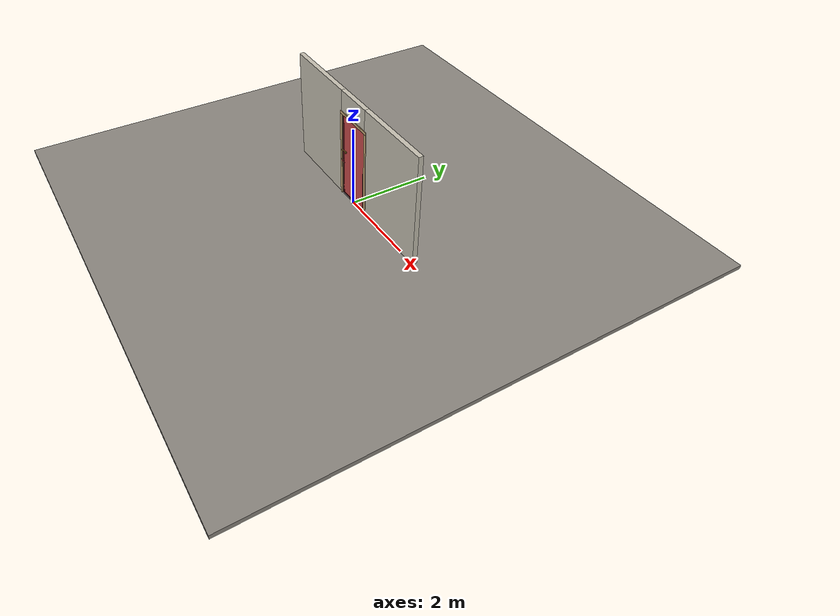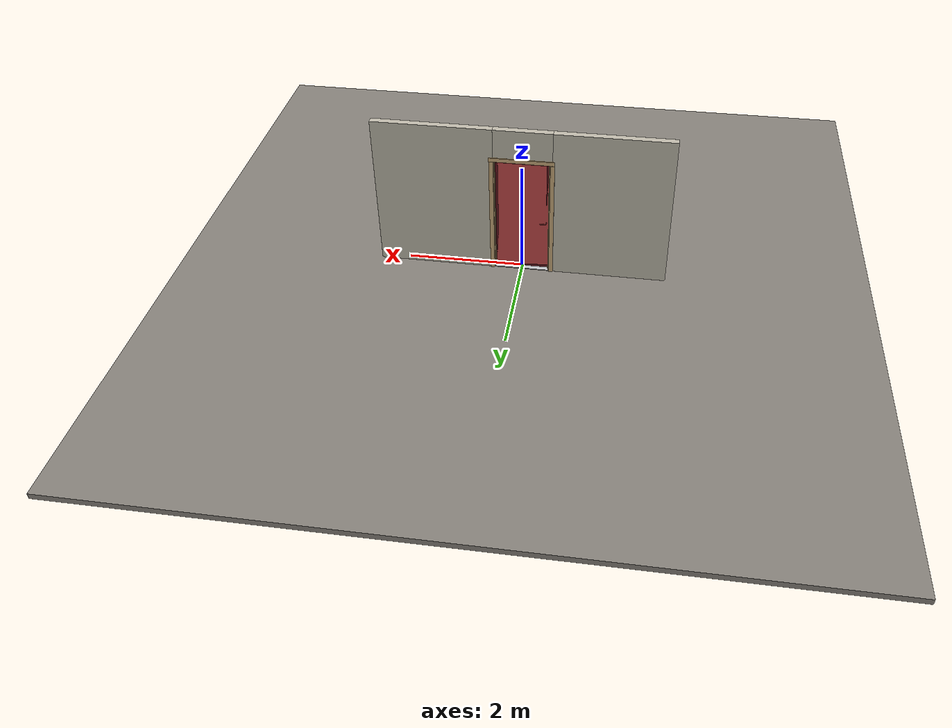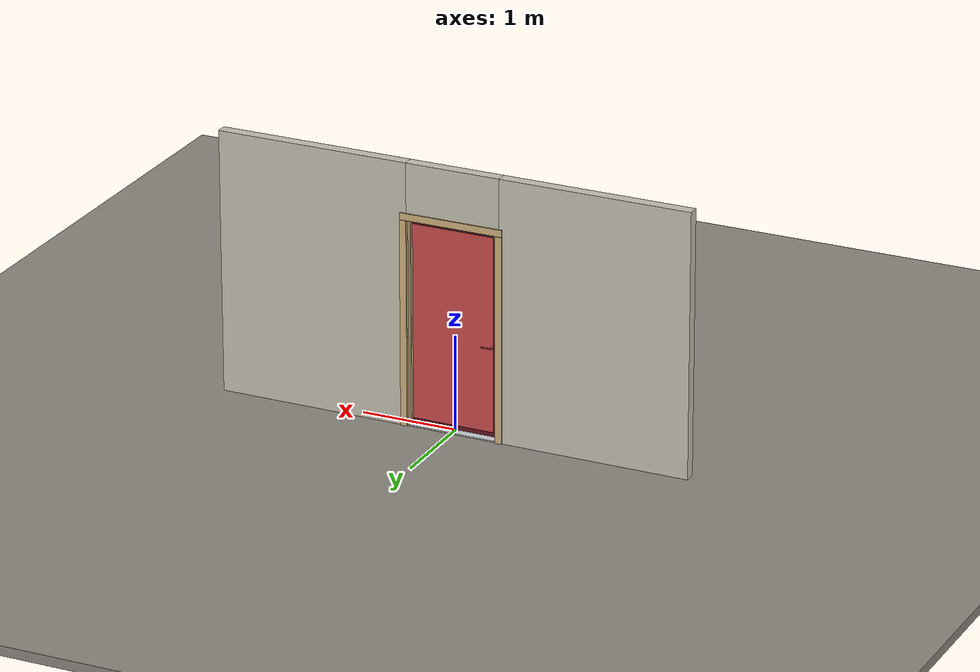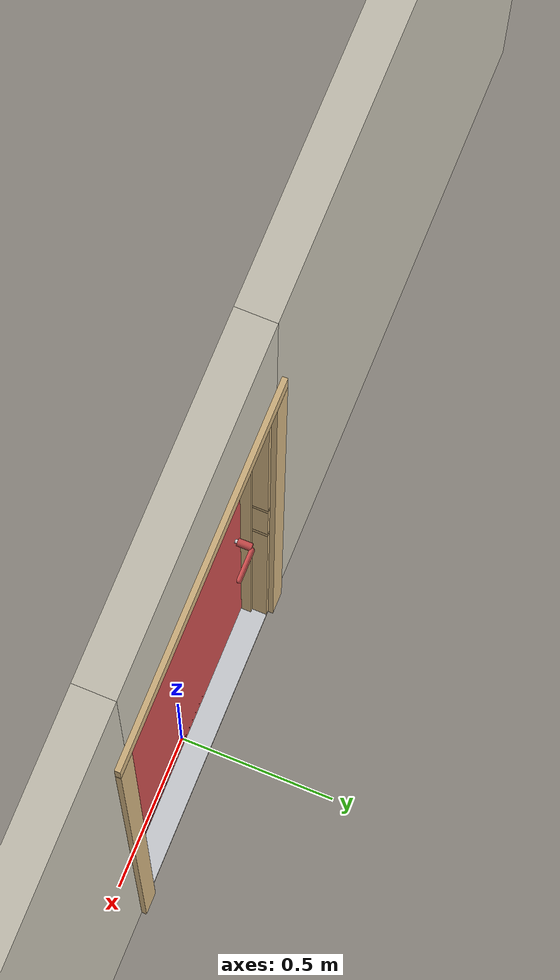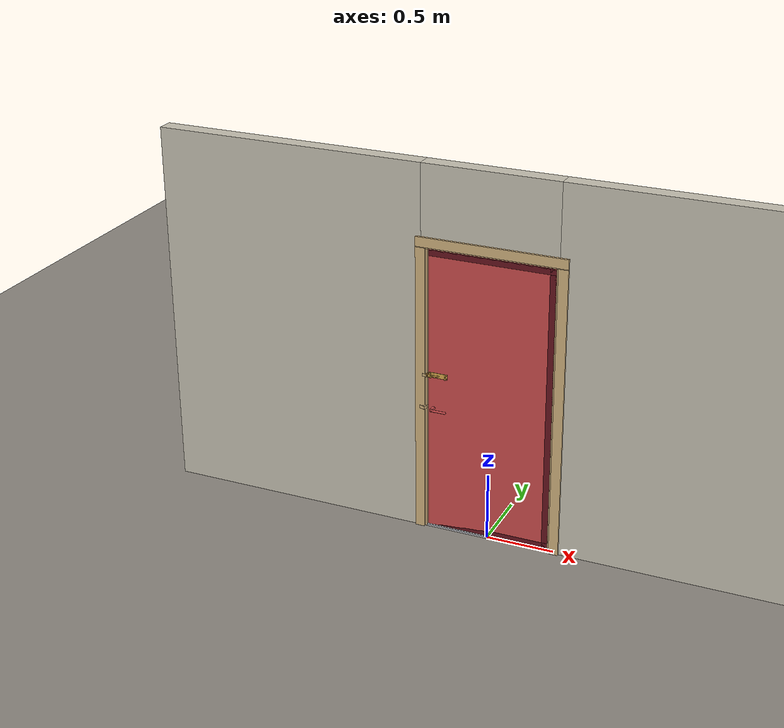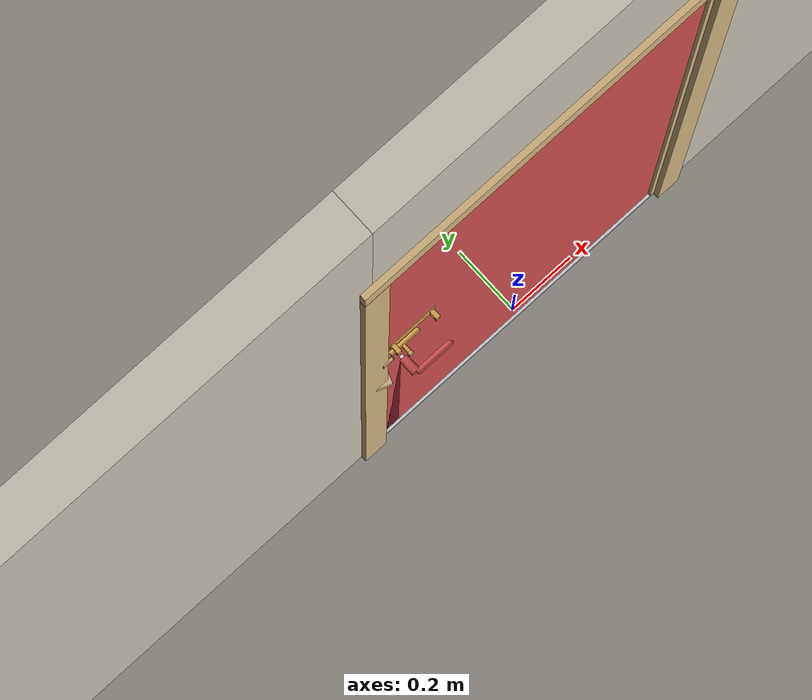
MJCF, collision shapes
<?xml version="1.0" ?>
<mujoco model="db0083_swing_single_full">
  <compiler angle="radian" meshdir="../../hardware" texturedir="../../textures" autolimits="true" inertiafromgeom="false"/>
  <option timestep="0.002" integrator="implicitfast" cone="elliptic" impratio="10" noslip_iterations="3">
    <flag multiccd="enable"/>
  </option>
  <size memory="16M"/>
  <default>
    <geom condim="4" solref="0.005 1" solimp="0.95 0.99 0.001"/>
    <joint solreflimit="0.005 1" solimplimit="0.95 0.99 0.001"/>
    <tendon solreflimit="0.005 1"/>
    <equality solref="0.002 1"/>
  </default>
  <visual>
    <headlight ambient="0.4 0.4 0.4" diffuse="0.7 0.7 0.7" specular="0.2 0.2 0.2"/>
    <quality shadowsize="4096"/>
    <map znear="0.01" zfar="60"/>
  </visual>
  <asset>
    <mesh name="hinge_15fcbc0360" file="hinge_15fcbc0360.obj"/>
    <mesh name="hinge_jamb_ba35ce4e6a" file="hinge_jamb_ba35ce4e6a.obj"/>
    <mesh name="house_numbers_ad0a8e8be0" file="house_numbers_ad0a8e8be0.obj"/>
    <mesh name="lever_748f08efca" file="lever_748f08efca.obj"/>
    <material name="mat_floor" rgba="0.55 0.53 0.5 1" specular="0.2" shininess="0.15" reflectance="0"/>
    <material name="mat_wall" rgba="0.78 0.76 0.7 1" specular="0.2" shininess="0.1" reflectance="0"/>
    <material name="mat_leaf" rgba="0.4 0.08 0.12 1" specular="0.2" shininess="0.49" reflectance="0"/>
    <material name="mat_mesh_infill" rgba="0.6 0.62 0.64 0.55" specular="0.68" shininess="0.3" reflectance="0.1"/>
    <material name="mat_hinge" rgba="0.65 0.66 0.68 1" specular="0.74" shininess="0.5" reflectance="0.36"/>
    <material name="mat_op_chrome" rgba="0.9 0.9 0.92 1" specular="0.8" shininess="0.9" reflectance="0.4"/>
    <material name="mat_trim" rgba="0.85 0.66 0.3 1" specular="0.8" shininess="0.75" reflectance="0.4"/>
    <material name="mat_bolt" rgba="0.85 0.66 0.3 1" specular="0.8" shininess="0.75" reflectance="0.4"/>
    <material name="mat_op_brass" rgba="0.85 0.66 0.3 1" specular="0.8" shininess="0.75" reflectance="0.4"/>
    <material name="mat_frame" rgba="0.82 0.7 0.5 1" specular="0.2" shininess="0.45" reflectance="0"/>
    <material name="mat_seal" rgba="0.1 0.1 0.1 1" specular="0.2" shininess="0.1" reflectance="0"/>
    <material name="mat_threshold" rgba="0.8 0.81 0.83 1" specular="0.8" shininess="0.6" reflectance="0.4"/>
    <material name="mat_numbers" rgba="0.05 0.05 0.05 1" specular="0.38" shininess="0.3" reflectance="0.12"/>
    <texture name="skybox" type="skybox" builtin="gradient" rgb1="0.6 0.7 0.85" rgb2="0.9 0.92 0.95" width="256" height="256"/>
  </asset>
  <worldbody>
    <light name="sun" pos="1.5 -2.5 4" dir="-0.3 0.5 -0.8" directional="true" diffuse="0.8 0.8 0.8" specular="0.3 0.3 0.3" castshadow="true"/>
    <light name="fill" pos="-1.5 2.5 3" dir="0.3 -0.5 -0.7" directional="true" diffuse="0.35 0.35 0.4" castshadow="false"/>
    <camera name="robot_view" pos="0 -2.601312 1.812087" xyaxes="1 0 0 0 0.26963 0.962964" fovy="52"/>
    <camera name="far_view" pos="0 2.674313 1.812087" xyaxes="-1 0 0 0 -0.26963 0.962964" fovy="52"/>
    <camera name="iso" pos="-2.004737 -2.179262 2.234138" xyaxes="0.741536 -0.670913 0 0.242917 0.268487 0.932151" fovy="46"/>
    <camera name="detail_handle" pos="-0.1419 -0.869 1.245" xyaxes="0.97561 0.219512 0 -0.070934 0.315262 0.94635" fovy="38"/>
    <geom name="floor" type="box" size="6 6 0.05" pos="0 0 -0.05" material="mat_floor" group="0" contype="1" conaffinity="1" friction="0.8 0.005 0.0001" density="2400"/>
    <geom name="wall_left" type="box" size="0.99525 0.0575 1.3735" pos="-1.50475 0.0365 1.3735" material="mat_wall" group="0" contype="1" conaffinity="1" friction="0.6 0.005 0.0001" density="800"/>
    <geom name="wall_right" type="box" size="1.01025 0.0575 1.3735" pos="1.48975 0.0365 1.3735" material="mat_wall" group="0" contype="1" conaffinity="1" friction="0.6 0.005 0.0001" density="800"/>
    <geom name="wall_header" type="box" size="0.4945 0.0575 0.2755" pos="-0.015 0.0365 2.4715" material="mat_wall" group="0" contype="1" conaffinity="1" friction="0.6 0.005 0.0001" density="800"/>
    <geom name="hinge_0_jamb" type="mesh" mesh="hinge_jamb_ba35ce4e6a" pos="0.4575 -0.021 0.267" quat="0 0 1 0" material="mat_hinge" group="1" contype="0" conaffinity="0" density="7850"/>
    <geom name="hinge_1_jamb" type="mesh" mesh="hinge_jamb_ba35ce4e6a" pos="0.4575 -0.021 1.08" quat="0 0 1 0" material="mat_hinge" group="1" contype="0" conaffinity="0" density="7850"/>
    <geom name="hinge_2_jamb" type="mesh" mesh="hinge_jamb_ba35ce4e6a" pos="0.4575 -0.021 1.963" quat="0 0 1 0" material="mat_hinge" group="1" contype="0" conaffinity="0" density="7850"/>
    <geom name="leaf_aux_bolt_keeper_b" type="box" size="0.014 0.003 0.0005" pos="-0.46 -0.026 1.202" quat="0.5 0.5 0.5 0.5" material="mat_op_brass" group="1" contype="0" conaffinity="0" density="7800"/>
    <geom name="leaf_aux_bolt_keeper_l" type="box" size="0.003 0.01 0.0005" pos="-0.46 -0.037 1.215" quat="0.5 0.5 0.5 0.5" material="mat_op_brass" group="1" contype="0" conaffinity="0" density="7800"/>
    <geom name="leaf_aux_bolt_keeper_t" type="box" size="0.014 0.003 0.0005" pos="-0.46 -0.026 1.228" quat="0.5 0.5 0.5 0.5" material="mat_op_brass" group="1" contype="0" conaffinity="0" density="7800"/>
    <geom name="leaf_aux_bolt_keeper_r" type="box" size="0.003 0.01 0.0005" pos="-0.46 -0.015 1.215" quat="0.5 0.5 0.5 0.5" material="mat_op_brass" group="1" contype="0" conaffinity="0" density="7800"/>
    <geom name="jamb_hinge" type="box" size="0.0095 0.0575 1.0735" pos="0.47 0.0365 1.0735" material="mat_frame" group="0" contype="1" conaffinity="1" friction="0.6 0.005 0.0001" density="400"/>
    <geom name="strike_965_wall_n" type="box" size="0.0245 0.04425 0.0115" pos="-0.485 0.04975 0.965" material="mat_frame" group="0" contype="1" conaffinity="1" friction="0.6 0.005 0.0001" density="400"/>
    <geom name="strike_965_wall_p" type="box" size="0.0245 0.008 0.0115" pos="-0.485 -0.0135 0.965" material="mat_frame" group="0" contype="1" conaffinity="1" friction="0.6 0.005 0.0001" density="400"/>
    <geom name="strike_965_ramp" type="box" size="0.0245 0.015977 0.0115" pos="-0.489002 -0.028066 0.965" quat="0.984601 0 0 -0.174819" material="mat_frame" group="0" contype="1" conaffinity="1" friction="0.12 0.005 0.0001" density="400"/>
    <geom name="strike_965_back" type="box" size="0.0175 0.0055 0.0115" pos="-0.492 0 0.965" material="mat_frame" group="0" contype="1" conaffinity="1" friction="0.6 0.005 0.0001" density="400"/>
    <geom name="strike_1215_wall_n" type="box" size="0.0245 0.056 0.01" pos="-0.485 0.038 1.215" material="mat_frame" group="0" contype="1" conaffinity="1" friction="0.6 0.005 0.0001" density="400"/>
    <geom name="strike_1215_wall_p" type="box" size="0.015 0.003 0.01" pos="-0.4755 -0.037 1.215" material="mat_frame" group="0" contype="1" conaffinity="1" friction="0.6 0.005 0.0001" density="400"/>
    <geom name="strike_1215_back" type="box" size="0.0125 0.008 0.01" pos="-0.497 -0.026 1.215" material="mat_frame" group="0" contype="1" conaffinity="1" friction="0.6 0.005 0.0001" density="400"/>
    <geom name="jamb_strike_0" type="box" size="0.0245 0.0575 0.47675" pos="-0.485 0.0365 0.47675" material="mat_frame" group="0" contype="1" conaffinity="1" friction="0.6 0.005 0.0001" density="400"/>
    <geom name="jamb_strike_1" type="box" size="0.0245 0.0575 0.11425" pos="-0.485 0.0365 1.09075" material="mat_frame" group="0" contype="1" conaffinity="1" friction="0.6 0.005 0.0001" density="400"/>
    <geom name="jamb_strike_2" type="box" size="0.0245 0.0575 0.461" pos="-0.485 0.0365 1.686" material="mat_frame" group="0" contype="1" conaffinity="1" friction="0.6 0.005 0.0001" density="400"/>
    <geom name="jamb_head" type="box" size="0.4945 0.0575 0.0095" pos="-0.015 0.0365 2.1565" material="mat_frame" group="0" contype="1" conaffinity="1" friction="0.6 0.005 0.0001" density="400"/>
    <geom name="head_stud" type="box" size="0.4945 0.0575 0.015" pos="-0.015 0.0365 2.181" material="mat_wall" group="0" contype="1" conaffinity="1" friction="0.6 0.005 0.0001" density="500"/>
    <geom name="stop_hinge" type="box" size="0.0055 0.016 1.0735" pos="0.455 0.0305 1.0735" material="mat_frame" group="0" contype="1" conaffinity="1" friction="0.6 0.005 0.0001" density="400"/>
    <geom name="stop_strike" type="box" size="0.0055 0.016 1.0735" pos="-0.455 0.0305 1.0735" material="mat_frame" group="0" contype="1" conaffinity="1" friction="0.6 0.005 0.0001" density="400"/>
    <geom name="stop_head" type="box" size="0.4605 0.016 0.0055" pos="0 0.0305 2.1415" material="mat_frame" group="0" contype="1" conaffinity="1" friction="0.6 0.005 0.0001" density="400"/>
    <geom name="seal_hinge" type="box" size="0.004 0.003 1.0735" pos="0.4575 0.017 1.0735" material="mat_seal" group="1" contype="0" conaffinity="0" density="1100"/>
    <geom name="seal_strike" type="box" size="0.004 0.003 1.0735" pos="-0.4575 0.017 1.0735" material="mat_seal" group="1" contype="0" conaffinity="0" density="1100"/>
    <geom name="seal_head" type="box" size="0.4405 0.003 0.008" pos="0 0.017 2.135" material="mat_seal" group="1" contype="0" conaffinity="0" density="1100"/>
    <geom name="casing_l_n" type="box" size="0.035 0.008 1.083" pos="-0.5095 -0.029 1.0735" material="mat_frame" group="2" contype="0" conaffinity="0" density="400"/>
    <geom name="casing_r_n" type="box" size="0.035 0.008 1.083" pos="0.5095 -0.029 1.0735" material="mat_frame" group="2" contype="0" conaffinity="0" density="400"/>
    <geom name="casing_h_n" type="box" size="0.5445 0.008 0.035" pos="0 -0.029 2.196" material="mat_frame" group="2" contype="0" conaffinity="0" density="400"/>
    <geom name="casing_l_p" type="box" size="0.035 0.008 1.083" pos="-0.5095 0.102 1.0735" material="mat_frame" group="2" contype="0" conaffinity="0" density="400"/>
    <geom name="casing_r_p" type="box" size="0.035 0.008 1.083" pos="0.5095 0.102 1.0735" material="mat_frame" group="2" contype="0" conaffinity="0" density="400"/>
    <geom name="casing_h_p" type="box" size="0.5445 0.008 0.035" pos="0 0.102 2.196" material="mat_frame" group="2" contype="0" conaffinity="0" density="400"/>
    <geom name="threshold" type="box" size="0.4795 0.0575 0.0065" pos="0 0.0365 0.0065" material="mat_threshold" group="0" contype="1" conaffinity="1" friction="0.5 0.005 0.0001" density="2700"/>
    <site name="approach_point" pos="0 -1.5 0" quat="1 0 0 0" size="0.05" rgba="0.2 0.9 0.2 0.5" group="4"/>
    <site name="goal_point" pos="0 1.5 0" quat="1 0 0 0" size="0.05" rgba="0.2 0.9 0.2 0.5" group="4"/>
    <site name="door_plane_center" pos="0 0 1.0735" quat="1 0 0 0" size="0.02" rgba="0.2 0.9 0.2 0.5" group="4"/>
    <body name="leaf" pos="0.4605 0 0">
      <inertial pos="-0.45924 -0.000067 1.080697" mass="148.116367" quat="0.499978 0.500053 0.499963 -0.500006" diaginertia="10.37829812 55.800384477 66.158980348"/>
      <joint name="leaf_hinge" type="hinge" axis="0 0 1" pos="-0.003 -0.021 0" limited="true" range="0 1.745329" solreflimit="0.02 1" damping="2.268966" frictionloss="6.619657" stiffness="6.6" springref="-1.303872" armature="0.02"/>
      <geom name="leaf_slab_col" type="box" size="0.457 0.014 1.063" pos="-0.46 0 1.08" material="mat_leaf" group="3" contype="1" conaffinity="1" rgba="0.8 0.3 0.3 0.25" friction="0.35 0.005 0.0001" density="1"/>
      <geom name="leaf_rail_b" type="box" size="0.457 0.014 0.0225" pos="-0.46 0 0.0395" material="mat_leaf" group="1" contype="0" conaffinity="0" density="1"/>
      <geom name="leaf_rail_t" type="box" size="0.457 0.014 0.0225" pos="-0.46 0 2.1205" material="mat_leaf" group="1" contype="0" conaffinity="0" density="1"/>
      <geom name="leaf_stile_h" type="box" size="0.0225 0.014 1.063" pos="-0.0255 0 1.08" material="mat_leaf" group="1" contype="0" conaffinity="0" density="1"/>
      <geom name="leaf_stile_l" type="box" size="0.0225 0.014 1.063" pos="-0.8945 0 1.08" material="mat_leaf" group="1" contype="0" conaffinity="0" density="1"/>
      <geom name="leaf_mesh" type="box" size="0.412 0.0015 1.018" pos="-0.46 0 1.08" material="mat_mesh_infill" group="1" contype="0" conaffinity="0" density="1"/>
      <geom name="hinge_0" type="mesh" mesh="hinge_15fcbc0360" pos="-0.003 -0.021 0.267" quat="0 0 1 0" material="mat_hinge" group="1" contype="0" conaffinity="0" density="7850"/>
      <geom name="hinge_1" type="mesh" mesh="hinge_15fcbc0360" pos="-0.003 -0.021 1.08" quat="0 0 1 0" material="mat_hinge" group="1" contype="0" conaffinity="0" density="7850"/>
      <geom name="hinge_2" type="mesh" mesh="hinge_15fcbc0360" pos="-0.003 -0.021 1.963" quat="0 0 1 0" material="mat_hinge" group="1" contype="0" conaffinity="0" density="7850"/>
      <geom name="leaf_latch_bolt_faceplate" type="box" size="0.0006 0.01 0.0215" pos="-0.9164 0 0.965" material="mat_bolt" group="1" contype="0" conaffinity="0" density="8500"/>
      <geom name="leaf_aux_bolt_plate" type="box" size="0.0685 0.019 0.001" pos="-0.8405 -0.015 1.215" quat="0 0 -0.707107 0.707107" material="mat_op_brass" group="1" contype="0" conaffinity="0" density="7800"/>
      <geom name="leaf_aux_bolt_guide_0_leg_n" type="box" size="0.006 0.002 0.0125" pos="-0.901 -0.0265 1.226" quat="0 0 -0.707107 0.707107" material="mat_op_brass" group="1" contype="0" conaffinity="0" density="7800"/>
      <geom name="leaf_aux_bolt_guide_0_leg_p" type="box" size="0.006 0.002 0.0125" pos="-0.901 -0.0265 1.204" quat="0 0 -0.707107 0.707107" material="mat_op_brass" group="1" contype="0" conaffinity="0" density="7800"/>
      <geom name="leaf_aux_bolt_guide_0_bridge" type="box" size="0.006 0.013 0.002" pos="-0.901 -0.037 1.215" quat="0 0 -0.707107 0.707107" material="mat_op_brass" group="1" contype="0" conaffinity="0" density="7800"/>
      <geom name="leaf_aux_bolt_guide_1_leg_n" type="box" size="0.006 0.002 0.0125" pos="-0.782 -0.0265 1.226" quat="0 0 -0.707107 0.707107" material="mat_op_brass" group="1" contype="0" conaffinity="0" density="7800"/>
      <geom name="leaf_aux_bolt_guide_1_leg_p" type="box" size="0.006 0.002 0.0125" pos="-0.782 -0.0265 1.204" quat="0 0 -0.707107 0.707107" material="mat_op_brass" group="1" contype="0" conaffinity="0" density="7800"/>
      <geom name="leaf_aux_bolt_guide_1_bridge" type="box" size="0.006 0.013 0.002" pos="-0.782 -0.037 1.215" quat="0 0 -0.707107 0.707107" material="mat_op_brass" group="1" contype="0" conaffinity="0" density="7800"/>
      <geom name="house_numbers" type="mesh" mesh="house_numbers_ad0a8e8be0" pos="-0.46 -0.014 1.793" quat="0 0 -0.707107 0.707107" material="mat_numbers" group="2" contype="0" conaffinity="0" density="1000"/>
      <site name="leaf_edge_mid" pos="-0.917 0 1.063" quat="1 0 0 0" size="0.02" rgba="0.2 0.9 0.2 0.5" group="4"/>
      <body name="leaf_handle" pos="-0.872 0 0.965">
        <inertial pos="0.024599 0 0" mass="0.833593" quat="0.707107 0 0 -0.707107" diaginertia="0.001178623 0.002522695 0.003564743"/>
        <joint name="leaf_handle_hinge" type="hinge" axis="0 1 0" limited="true" range="0 0.87" damping="0.205083" frictionloss="0.04" stiffness="0.9" springref="-0.444444" armature="0.01"/>
        <geom name="leaf_handle_spindle" type="cylinder" size="0.006 0.022" pos="0 0 0" quat="0.707107 -0.707107 0 0" material="mat_op_chrome" group="1" contype="0" conaffinity="0" density="7850"/>
        <geom name="leaf_handle_lever_n" type="mesh" mesh="lever_748f08efca" pos="0 -0.014 0" quat="0 0 -0.707107 0.707107" material="mat_op_chrome" group="1" contype="0" conaffinity="0" density="3000"/>
        <geom name="leaf_handle_lever_col_n" type="capsule" size="0.008 0.048" pos="0.056 -0.069 0" quat="0.707107 0 0.707107 0" material="mat_op_chrome" group="3" contype="1" conaffinity="1" rgba="0.8 0.3 0.3 0.25" friction="0.7 0.01 0.0001" density="3000"/>
        <geom name="leaf_handle_hub_col_n" type="cylinder" size="0.012 0.022" pos="0 -0.044 0" quat="0.707107 -0.707107 0 0" material="mat_op_chrome" group="3" contype="1" conaffinity="1" rgba="0.8 0.3 0.3 0.25" friction="0.6 0.005 0.0001" density="3000"/>
        <geom name="leaf_handle_lever_p" type="mesh" mesh="lever_748f08efca" pos="0 0.014 0" quat="0 0 0.707107 0.707107" material="mat_op_chrome" group="1" contype="0" conaffinity="0" density="3000"/>
        <geom name="leaf_handle_lever_col_p" type="capsule" size="0.008 0.048" pos="0.056 0.069 0" quat="0.707107 0 0.707107 0" material="mat_op_chrome" group="3" contype="1" conaffinity="1" rgba="0.8 0.3 0.3 0.25" friction="0.7 0.01 0.0001" density="3000"/>
        <geom name="leaf_handle_hub_col_p" type="cylinder" size="0.012 0.022" pos="0 0.044 0" quat="0.707107 -0.707107 0 0" material="mat_op_chrome" group="3" contype="1" conaffinity="1" rgba="0.8 0.3 0.3 0.25" friction="0.6 0.005 0.0001" density="3000"/>
        <site name="leaf_handle_grip_n" pos="0.0896 -0.069 0" quat="1 0 0 0" size="0.012" rgba="0.2 0.9 0.2 0.5" group="4"/>
        <site name="leaf_handle_grip_p" pos="0.0896 0.069 0" quat="1 0 0 0" size="0.012" rgba="0.2 0.9 0.2 0.5" group="4"/>
      </body>
      <body name="leaf_latch_bolt" pos="-0.917 0 0.965">
        <inertial pos="0.008 0 0" mass="0.014242" quat="0 0 -0.707107 0.707107" diaginertia="0.00000011 0.000001386 0.000001386"/>
        <joint name="leaf_latch_bolt_slide" type="slide" axis="1 0 0" limited="true" range="0 0.01" damping="2" frictionloss="0.3" stiffness="300" springref="-0.006667" armature="0.1"/>
        <geom name="leaf_latch_bolt_capsule" type="capsule" size="0.004 0.014" pos="0.008 0 0" quat="0.707107 0 -0.707107 0" material="mat_bolt" group="0" contype="1" conaffinity="1" friction="0.2 0.005 0.0001" density="8500"/>
      </body>
      <body name="leaf_aux_bolt" pos="-0.917 -0.026 1.215">
        <inertial pos="0.037287 -0.00492 0" mass="0.111784" quat="0.999932 0 0 0.011627" diaginertia="0.000012853 0.000066972 0.000077936"/>
        <joint name="leaf_aux_bolt_slide" type="slide" axis="1 0 0" limited="true" range="0 0.045" damping="1" frictionloss="1" armature="0.1"/>
        <geom name="leaf_aux_bolt_rod" type="capsule" size="0.006 0.044" pos="0.038 0 0" quat="0.707107 0 -0.707107 0" material="mat_op_brass" group="0" contype="1" conaffinity="1" friction="0.6 0.005 0.0001" density="7850"/>
        <geom name="leaf_aux_bolt_knob" type="capsule" size="0.005 0.01" pos="0.035 -0.015 0" quat="0.707107 0.707107 0 0" material="mat_op_brass" group="0" contype="1" conaffinity="1" friction="0.6 0.005 0.0001" density="7850"/>
        <geom name="leaf_aux_bolt_knob_end" type="sphere" size="0.00675" pos="0.035 -0.03 0" material="mat_op_brass" group="1" contype="0" conaffinity="0" density="7850"/>
        <site name="leaf_aux_bolt_grip" pos="0.035 -0.034 0" quat="1 0 0 0" size="0.012" rgba="0.2 0.9 0.2 0.5" group="4"/>
      </body>
    </body>
  </worldbody>
  <tendon>
    <fixed name="leaf_latch_bolt_coupling" limited="true" range="0 10">
      <joint joint="leaf_latch_bolt_slide" coef="1"/>
      <joint joint="leaf_handle_hinge" coef="-0.012658"/>
    </fixed>
  </tendon>
  <sensor>
    <jointpos name="leaf_hinge_pos" joint="leaf_hinge"/>
    <jointvel name="leaf_hinge_vel" joint="leaf_hinge"/>
    <jointpos name="leaf_handle_hinge_pos" joint="leaf_handle_hinge"/>
    <jointvel name="leaf_handle_hinge_vel" joint="leaf_handle_hinge"/>
    <jointpos name="leaf_latch_bolt_slide_pos" joint="leaf_latch_bolt_slide"/>
    <jointvel name="leaf_latch_bolt_slide_vel" joint="leaf_latch_bolt_slide"/>
    <jointpos name="leaf_aux_bolt_slide_pos" joint="leaf_aux_bolt_slide"/>
    <jointvel name="leaf_aux_bolt_slide_vel" joint="leaf_aux_bolt_slide"/>
  </sensor>
</mujoco>
